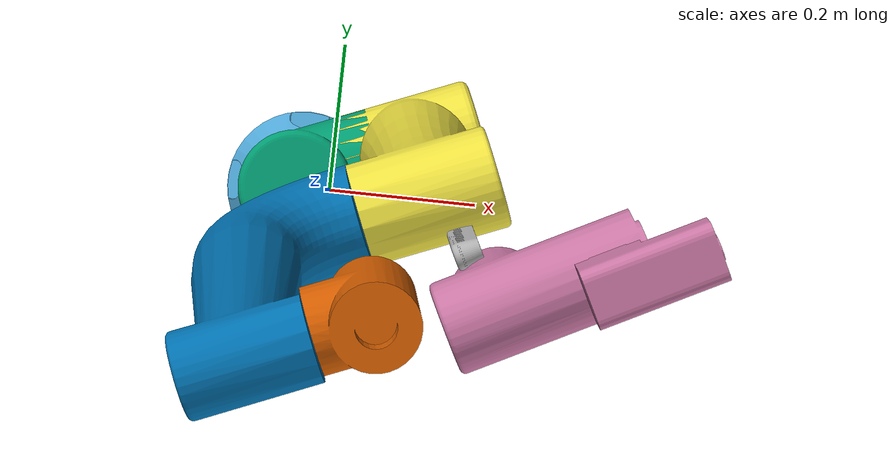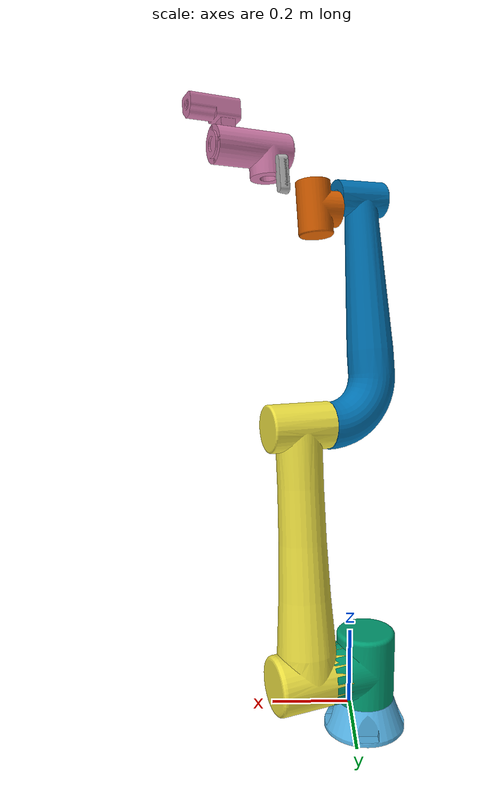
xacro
<?xml version="1.0"?>
<robot xmlns:xacro="http://www.ros.org/wiki/xacro" name="tm20">
    <xacro:arg name="initial_positions_file" default="initial_positions.yaml" />

    <!-- Import tm20 urdf file -->
    <xacro:include filename="$(find tm20)/urdf/tm20.urdf" />

    <!-- Import control_xacro -->
    <xacro:include filename="tm20.ros2_control.xacro" />

    <xacro:tm20_ros2_control name="FakeSystem" initial_positions_file="$(arg initial_positions_file)"/>

</robot>

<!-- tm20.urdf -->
<robot name="tm20">

  <ros2_control name="gz_ros2_control" type="system">
    <hardware>
      <plugin>gz_ros2_control/GazeboSimSystem</plugin>
    </hardware>
    <joint name="joint_1">
      <command_interface name="position"/>
      <state_interface name="position"><param name="initial_value">0.0</param></state_interface>
      <state_interface name="velocity"/>
    </joint>
    <joint name="joint_2">
      <command_interface name="position"/>
      <state_interface name="position"><param name="initial_value">0.0</param></state_interface>
      <state_interface name="velocity"/>
    </joint>
    <joint name="joint_3">
      <command_interface name="position"/>
      <state_interface name="position"><param name="initial_value">0.0</param></state_interface>
      <state_interface name="velocity"/>
    </joint>
    <joint name="joint_4">
      <command_interface name="position"/>
      <state_interface name="position"><param name="initial_value">0.0</param></state_interface>
      <state_interface name="velocity"/>
    </joint>
    <joint name="joint_5">
      <command_interface name="position"/>
      <state_interface name="position"><param name="initial_value">0.0</param></state_interface>
      <state_interface name="velocity"/>
    </joint>
    <joint name="joint_6">
      <command_interface name="position"/>
      <state_interface name="position"><param name="initial_value">0.0</param></state_interface>
      <state_interface name="velocity"/>
    </joint>
  </ros2_control>

  <link name="world"/>
  <joint name="world_joint" type="fixed">
    <parent link="world"/>
    <child link="base_link"/>
    <origin xyz="0 0 0" rpy="0 0 0"/>
  </joint>

  <link name="base_link">
    <inertial>
      <origin xyz="-0.04007 -0.03016 0.00037" rpy="0 0 0" />
      <mass value="1.886" />
      <inertia ixx="0.005" ixy="0" ixz="0" iyy="0.008" iyz="0" izz="0.005" />
    </inertial>
    <visual>
      <geometry><mesh filename="package://tm20/meshes/base_link.STL" /></geometry>
    </visual>
    <collision>
      <origin xyz="0 0 0.05" rpy="0 0 0"/>
      <geometry><cylinder radius="0.1" length="0.1"/></geometry>
    </collision>
  </link>

  <link name="link_1">
    <inertial>
      <origin xyz="0.01897 0.09227 0" rpy="0 0 0" />
      <mass value="4.057" />
      <inertia ixx="0.016" ixy="0.0005" ixz="0" iyy="0.016" iyz="0" izz="0.020" />
    </inertial>
    <visual>
      <geometry><mesh filename="package://tm20/meshes/link_1.STL" /></geometry>
    </visual>
    <collision>
      <origin xyz="0 0.1 0" rpy="1.5708 0 0"/>
      <geometry><cylinder radius="0.08" length="0.2"/></geometry>
    </collision>
  </link>

  <joint name="joint_1" type="revolute">
    <origin xyz="-0.04007 -0.00037 0.01545" rpy="1.5708 0 0.39147" />
    <parent link="base_link" />
    <child link="link_1" />
    <axis xyz="0 1 0" />
    <limit lower="-4.71" upper="4.71" effort="100" velocity="10.0" />
  </joint>

  <link name="link_2">
    <inertial>
      <origin xyz="0 0.2641 -0.0656" rpy="0 0 0" />
      <mass value="11.25" />
      <inertia ixx="0.640" ixy="0" ixz="0" iyy="0.031" iyz="0.0001" izz="0.634" />
    </inertial>
    <visual>
      <geometry><mesh filename="package://tm20/meshes/link_2.STL" /></geometry>
    </visual>
    <collision>
      <origin xyz="0 0.26 0" rpy="1.5708 0 0"/>
      <geometry><cylinder radius="0.08" length="0.55"/></geometry>
    </collision>
  </link>

  <joint name="joint_2" type="revolute">
    <origin xyz="0.14186 0.085 0" rpy="1.5708 -1.4804 -1.5708" />
    <parent link="link_1" />
    <child link="link_2" />
    <axis xyz="0 0 1" />
    <limit lower="-3.14" upper="3.14" effort="100" velocity="10" />
  </joint>

  <link name="link_3">
    <inertial>
      <origin xyz="-0.06778 0.26348 0" rpy="0 0 0" />
      <mass value="4.043" />
      <inertia ixx="0.149" ixy="0.0029" ixz="0" iyy="0.0048" iyz="0" izz="0.150" />
    </inertial>
    <visual>
      <geometry><mesh filename="package://tm20/meshes/link_3.STL" /></geometry>
    </visual>
    <collision>
      <origin xyz="0 0.26 0" rpy="1.5708 0 0"/>
      <geometry><cylinder radius="0.06" length="0.55"/></geometry>
    </collision>
  </link>

  <joint name="joint_3" type="revolute">
    <origin xyz="0 0.6361 0" rpy="0.079313 1.5708 0" />
    <parent link="link_2" />
    <child link="link_3" />
    <axis xyz="1 0 0" />
    <limit lower="-2.9" upper="2.9" effort="100" velocity="10.0" />
  </joint>

  <link name="link_4">
    <inertial>
      <origin xyz="-0.04898 -0.00371 0" rpy="0 0 0" />
      <mass value="0.84" />
      <inertia ixx="0.0014" ixy="0" ixz="0" iyy="0.0009" iyz="0" izz="0.0016" />
    </inertial>
    <visual>
      <geometry><mesh filename="package://tm20/meshes/link_4.STL" /></geometry>
    </visual>
    <collision>
      <origin xyz="0 0 0" rpy="1.5708 0 0"/>
      <geometry><cylinder radius="0.05" length="0.15"/></geometry>
    </collision>
  </link>

  <joint name="joint_4" type="revolute">
    <origin xyz="0 0.5271 0" rpy="3.1396 0 -3.1416" />
    <parent link="link_3" />
    <child link="link_4" />
    <axis xyz="1 0 0" />
    <limit lower="-3.14" upper="3.14" effort="100" velocity="10.0" />
  </joint>

  <link name="link_5">
    <inertial>
      <origin xyz="-0.07928 0 0.05484" rpy="0 0 0" />
      <mass value="1.582" />
      <inertia ixx="0.0048" ixy="0" ixz="0.0003" iyy="0.0051" iyz="0" izz="0.0016" />
    </inertial>
    <visual>
      <geometry><mesh filename="package://tm20/meshes/link_5.STL" /></geometry>
    </visual>
    <collision>
      <origin xyz="0 0 0" rpy="0 0 0"/>
      <geometry><cylinder radius="0.05" length="0.15"/></geometry>
    </collision>
  </link>

  <joint name="joint_5" type="revolute">
    <origin xyz="-0.055141 0.060015 0" rpy="1.4876 0 -1.5708" />
    <parent link="link_4" />
    <child link="link_5" />
    <axis xyz="1 0 0" />
    <limit lower="-3.14" upper="3.14" effort="100" velocity="10.0" />
  </joint>

  <link name="link_6">
    <inertial>
      <origin xyz="0 0 0.02" rpy="0 0 0" />
      <mass value="0.2" />
      <inertia ixx="0.0001" ixy="0" ixz="0" iyy="0.0001" iyz="0" izz="0.0001" />
    </inertial>
    <visual>
      <geometry><mesh filename="package://tm20/meshes/link_6.STL" /></geometry>
    </visual>
    <collision>
      <origin xyz="0 0 0.02" rpy="0 0 0"/>
      <geometry><box size="0.025 0.09 0.025"/></geometry>
    </collision>
  </link>

  <joint name="joint_6" type="revolute">
    <origin xyz="0 0.05 0" rpy="0 0 0" />
    <parent link="link_5" />
    <child link="link_6" />
    <axis xyz="0 0 1" />
    <limit lower="-6.28" upper="6.28" effort="50" velocity="10.0" />
  </joint>

  <gazebo reference="link_6">
    <sensor type="rgbd_camera" name="intel_d435">
      <always_on>true</always_on>
      <update_rate>30.0</update_rate>
      <topic>camera/depth_image</topic>
      <camera>
        <horizontal_fov>1.50098</horizontal_fov>
        <image>
          <width>640</width>
          <height>480</height>
        </image>
        <clip>
          <near>0.1</near>
          <far>10.0</far>
        </clip>
      </camera>
    </sensor>
  </gazebo>

  <gazebo>
    <plugin name="gz_ros2_control::GazeboSimROS2ControlPlugin" filename="libgz_ros2_control-system.so">
      <parameters>$(find tm20)/config/joint_names_tm20.yaml</parameters>
    </plugin>

    <plugin filename="gz-sim-sensors-system" name="gz::sim::systems::Sensors">
      <render_engine>ogre2</render_engine>
    </plugin>
  </gazebo>

</robot>
